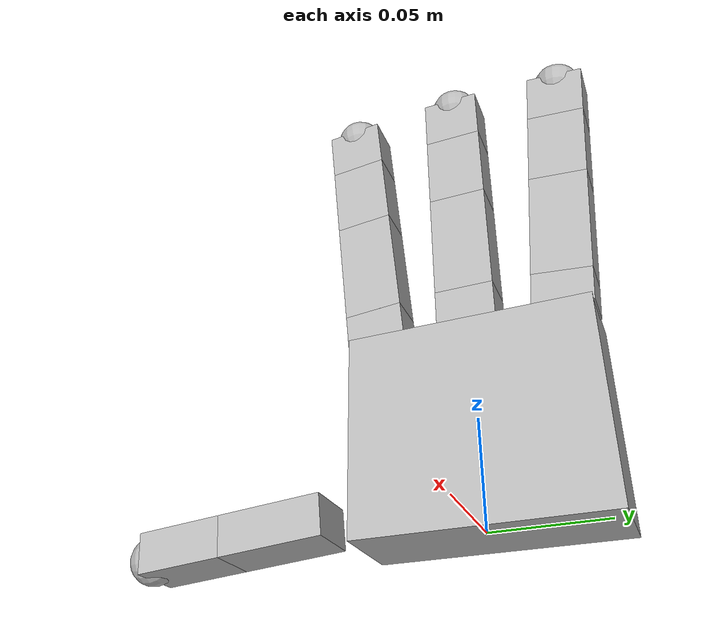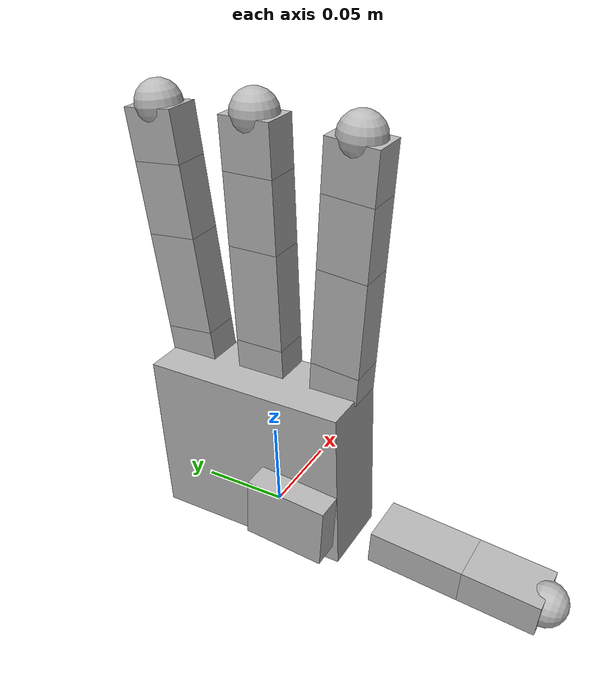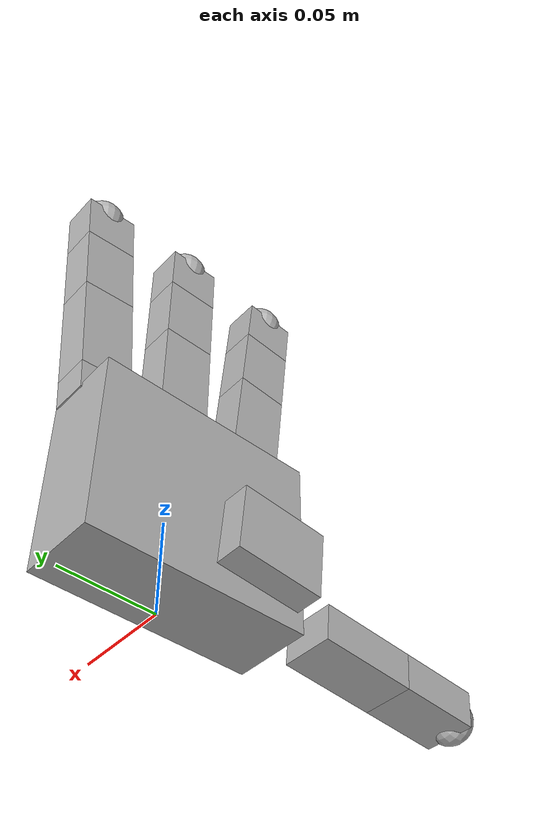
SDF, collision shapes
<?xml version='1.0'?>
<sdf version='1.6'>
  <model name='allegro_hand_left'>
    <link name='hand_root'>
      <pose frame=''>0 0 0 0 -0 0</pose>
      <inertial>
        <pose frame=''>0 0 0 0 -0 0</pose>
        <mass>0.4154</mass>
        <inertia>
          <ixx>0.00208916</ixx>
          <ixy>-3.63457e-06</ixy>
          <ixz>0.000223277</ixz>
          <iyy>0.00182848</iyy>
          <iyz>-1.75634e-05</iyz>
          <izz>0.000482459</izz>
        </inertia>
      </inertial>
      <collision name='hand_root_fixed_joint_lump__palm_link_collision'>
        <pose frame=''>-0.0093 0 0.0475 0 -0 0</pose>
        <geometry>
          <box>
            <size>0.0408 0.113 0.095</size>
          </box>
        </geometry>
      </collision>
      <visual name='hand_root_fixed_joint_lump__palm_link_visual'>
        <pose frame=''>0 0 0.095 -1.5708 0 0</pose>
        <geometry>
          <mesh>
            <scale>1 1 1</scale>
            <uri>../meshes/base_link_left.obj</uri>
          </mesh>
        </geometry>
      </visual>
    </link>

    <link name='link_8'>
      <pose frame=''>0 0.0435 0.093458 -0.087267 0 0</pose>
      <inertial>
        <pose frame=''>0 0 0 0 -0 0</pose>
        <mass>0.0119</mass>
        <inertia>
          <ixx>1.95377e-06</ixx>
          <ixy>3.03372e-09</ixy>
          <ixz>8.92323e-08</ixz>
          <iyy>1.17908e-06</iyy>
          <iyz>-3.7069e-08</iyz>
          <izz>1.49673e-06</izz>
        </inertia>
      </inertial>
      <collision name='link_8_collision'>
        <pose frame=''>0 0 0.0082 0 -0 0</pose>
        <geometry>
          <box>
            <size>0.0196 0.0275 0.0164</size>
          </box>
        </geometry>
      </collision>
      <visual name='link_8_visual'>
        <pose frame=''>0 0 0 0 -0 0</pose>
        <geometry>
          <mesh>
            <scale>1 1 1</scale>
            <uri>../meshes/link_0.0.obj</uri>
          </mesh>
        </geometry>
      </visual>
    </link>
    <joint name='joint_8' type='revolute'>
      <child>link_8</child>
      <parent>hand_root</parent>
      <axis>
        <xyz>0 -0.087156 -0.996195</xyz>
        <limit>
          <lower>-0.47</lower>
          <upper>0.47</upper>
          <effort>15</effort>
          <velocity>7</velocity>
        </limit>
        <dynamics>
          <damping>1e-2</damping>
          <friction>10</friction>
          <spring_reference>0</spring_reference>
          <spring_stiffness>0</spring_stiffness>
        </dynamics>
        <use_parent_model_frame>1</use_parent_model_frame>
      </axis>
    </joint>
    <link name='link_9'>
      <pose frame=''>0 0.044929 0.109796 -0.087267 0 0</pose>
      <inertial>
        <pose frame=''>0 0 0 0 -0 0</pose>
        <mass>0.065</mass>
        <inertia>
          <ixx>7.19218e-05</ixx>
          <ixy>0</ixy>
          <ixz>0</ixz>
          <iyy>7.4377e-05</iyy>
          <iyz>7.32186e-07</iyz>
          <izz>5.40622e-06</izz>
        </inertia>
      </inertial>
      <collision name='link_9_collision'>
        <pose frame=''>0 0 0.027 0 -0 0</pose>
        <geometry>
          <box>
            <size>0.0196 0.0275 0.054</size>
          </box>
        </geometry>
      </collision>
      <visual name='link_9_visual'>
        <pose frame=''>0 0 0 0 -0 0</pose>
        <geometry>
          <mesh>
            <scale>1 1 1</scale>
            <uri>../meshes/link_1.0.obj</uri>
          </mesh>
        </geometry>
      </visual>
    </link>
    <joint name='joint_9' type='revolute'>
      <child>link_9</child>
      <parent>link_8</parent>
      <axis>
        <xyz>0 0.996195 -0.087156</xyz>
        <limit>
          <lower>-0.196</lower>
          <upper>1.61</upper>
          <effort>15</effort>
          <velocity>7</velocity>
        </limit>
        <dynamics>
          <damping>1e-2</damping>
          <friction>5</friction>
          <spring_reference>0</spring_reference>
          <spring_stiffness>0</spring_stiffness>
        </dynamics>
        <use_parent_model_frame>1</use_parent_model_frame>
      </axis>
    </joint>
    <link name='link_10'>
      <pose frame=''>0 0.049636 0.16359 -0.087267 0 0</pose>
      <inertial>
        <pose frame=''>0 0 0 0 -0 0</pose>
        <mass>0.0355</mass>
        <inertia>
          <ixx>3.16925e-05</ixx>
          <ixy>1.07094e-09</ixy>
          <ixz>-4.91273e-09</ixz>
          <iyy>3.10516e-05</iyy>
          <iyz>3.87549e-08</iyz>
          <izz>3.20319e-06</izz>
        </inertia>
      </inertial>
      <collision name='link_10_collision'>
        <pose frame=''>0 0 0.0192 0 -0 0</pose>
        <geometry>
          <box>
            <size>0.0196 0.0275 0.0384</size>
          </box>
        </geometry>
      </collision>
      <visual name='link_10_visual'>
        <pose frame=''>0 0 0 0 -0 0</pose>
        <geometry>
          <mesh>
            <scale>1 1 1</scale>
            <uri>../meshes/link_2.0.obj</uri>
          </mesh>
        </geometry>
      </visual>
    </link>
    <joint name='joint_10' type='revolute'>
      <child>link_10</child>
      <parent>link_9</parent>
      <axis>
        <xyz>0 0.996195 -0.087156</xyz>
        <limit>
          <lower>-0.174</lower>
          <upper>1.709</upper>
          <effort>15</effort>
          <velocity>7</velocity>
        </limit>
        <dynamics>
          <damping>2.5e-2</damping>
          <friction>10</friction>
          <spring_reference>0</spring_reference>
          <spring_stiffness>0</spring_stiffness>
        </dynamics>
        <use_parent_model_frame>1</use_parent_model_frame>
      </axis>
    </joint>
    <link name='link_11'>
      <pose frame=''>0 0.052983 0.201844 -0.087267 0 0</pose>
      <inertial>
        <pose frame=''>0 0 0 0 -0 0</pose>
        <mass>0.0264</mass>
        <inertia>
          <ixx>1.26304e-05</ixx>
          <ixy>2.09248e-09</ixy>
          <ixz>-9.80352e-09</ixz>
          <iyy>1.1818e-05</iyy>
          <iyz>-1.29747e-08</iyz>
          <izz>2.48371e-06</izz>
        </inertia>
      </inertial>
      <collision name='link_11_collision'>
        <pose frame=''>0 0 0.01335 0 -0 0</pose>
        <geometry>
          <box>
            <size>0.0196 0.0275 0.0267</size>
          </box>
        </geometry>
      </collision>
      <collision name='link_11_tip_collision_1'>
        <pose frame=''>0 0 0.0267 0 -0 0</pose>
        <geometry>
          <sphere>
            <radius>0.012</radius>
          </sphere>
        </geometry>
      </collision>
      <visual name='link_11_visual'>
        <pose frame=''>0 0 0 0 -0 0</pose>
        <geometry>
          <mesh>
            <scale>1 1 1</scale>
            <uri>../meshes/link_3.0.obj</uri>
          </mesh>
        </geometry>
      </visual>
      <visual name='link_11_tip_visual_1'>
        <pose frame=''>0 0 0.0267 0 -0 0</pose>
        <geometry>
          <mesh>
            <scale>1 1 1</scale>
            <uri>../meshes/link_3.0_tip.obj</uri>
          </mesh>
        </geometry>
      </visual>
    </link>
    <joint name='joint_11' type='revolute'>
      <child>link_11</child>
      <parent>link_10</parent>
      <axis>
        <xyz>0 0.996195 -0.087156</xyz>
        <limit>
          <lower>-0.227</lower>
          <upper>1.618</upper>
          <effort>15</effort>
          <velocity>7</velocity>
        </limit>
        <dynamics>
          <damping>3.2e-2</damping>
          <friction>12</friction>
          <spring_reference>0</spring_reference>
          <spring_stiffness>0</spring_stiffness>
        </dynamics>
        <use_parent_model_frame>1</use_parent_model_frame>
      </axis>
    </joint>
    <link name='link_12'>
      <pose frame=''>-0.0182 -0.019333 0.049013 -3.14159 -1.48353 -1.5708</pose>
      <inertial>
        <pose frame=''>0 0 0 0 -0 0</pose>
        <mass>0.0176</mass>
        <inertia>
          <ixx>8.13883e-06</ixx>
          <ixy>-2.55226e-06</ixy>
          <ixz>3.89933e-06</ixz>
          <iyy>1.31421e-05</iyy>
          <iyz>1.46267e-06</iyz>
          <izz>1.00171e-05</izz>
        </inertia>
      </inertial>
      <collision name='link_12_collision'>
        <pose frame=''>-0.0179 0.009 0.0145 0 -0 0</pose>
        <geometry>
          <box>
            <size>0.0358 0.034 0.0455</size>
          </box>
        </geometry>
      </collision>
      <visual name='link_12_visual'>
        <pose frame=''>0 0 0 3.14159 -0 0</pose>
        <geometry>
          <mesh>
            <scale>1 1 1</scale>
            <uri>../meshes/link_12.0_left.obj</uri>
          </mesh>
        </geometry>
      </visual>
    </link>
    <joint name='joint_12' type='revolute'>
      <child>link_12</child>
      <parent>hand_root</parent>
      <axis>
        <xyz>-0 -0.087156 0.996195</xyz>
        <limit>
          <lower>0.263</lower>
          <upper>1.396</upper>
          <effort>15</effort>
          <velocity>7</velocity>
        </limit>
        <dynamics>
          <damping>1e-2</damping>
          <friction>10</friction>
          <spring_reference>0</spring_reference>
          <spring_stiffness>0</spring_stiffness>
        </dynamics>
        <use_parent_model_frame>1</use_parent_model_frame>
      </axis>
    </joint>
    <link name='link_13'>
      <pose frame=''>-0.0132 -0.056728 0.018638 -3.14159 -1.48353 -1.5708</pose>
      <inertial>
        <pose frame=''>0 0 0 0 -0 0</pose>
        <mass>0.0119</mass>
        <inertia>
          <ixx>1.9263e-06</ixx>
          <ixy>3.05433e-09</ixy>
          <ixz>8.86582e-08</ixz>
          <iyy>1.15276e-06</iyy>
          <iyz>-3.64521e-08</iyz>
          <izz>1.4957e-06</izz>
        </inertia>
      </inertial>
      <visual name='link_13_visual'>
        <pose frame=''>0 0 0 0 -0 0</pose>
        <geometry>
          <mesh>
            <scale>1 1 1</scale>
            <uri>../meshes/link_13.0.obj</uri>
          </mesh>
        </geometry>
      </visual>
    </link>
    <joint name='joint_13' type='revolute'>
      <child>link_13</child>
      <parent>link_12</parent>
      <axis>
        <xyz>0 0.996195 0.087156</xyz>
        <limit>
          <lower>-0.105</lower>
          <upper>1.163</upper>
          <effort>15</effort>
          <velocity>7</velocity>
        </limit>
        <dynamics>
          <damping>1e-2</damping>
          <friction>5</friction>
          <spring_reference>0</spring_reference>
          <spring_stiffness>0</spring_stiffness>
        </dynamics>
        <use_parent_model_frame>1</use_parent_model_frame>
      </axis>
    </joint>
    <link name='link_14'>
      <pose frame=''>-0.0132 -0.074361 0.017096 -3.14159 -1.48353 -1.5708</pose>
      <inertial>
        <pose frame=''>0 0 0 0 -0 0</pose>
        <mass>0.038</mass>
        <inertia>
          <ixx>3.67044e-05</ixx>
          <ixy>1.02277e-09</ixy>
          <ixz>1.4854e-07</ixz>
          <iyy>3.54042e-05</iyy>
          <iyz>-3.67203e-08</iyz>
          <izz>3.63275e-06</izz>
        </inertia>
      </inertial>
      <collision name='link_14_collision'>
        <pose frame=''>0 0 0.0257 0 -0 0</pose>
        <geometry>
          <box>
            <size>0.0196 0.0275 0.0514</size>
          </box>
        </geometry>
      </collision>
      <visual name='link_14_visual'>
        <pose frame=''>0 0 0 0 -0 0</pose>
        <geometry>
          <mesh>
            <scale>1 1 1</scale>
            <uri>../meshes/link_14.0.obj</uri>
          </mesh>
        </geometry>
      </visual>
    </link>
    <joint name='joint_14' type='revolute'>
      <child>link_14</child>
      <parent>link_13</parent>
      <axis>
        <xyz>-1 0 -0</xyz>
        <limit>
          <lower>-0.189</lower>
          <upper>1.644</upper>
          <effort>15</effort>
          <velocity>7</velocity>
        </limit>
        <dynamics>
          <damping>1e-2</damping>
          <friction>10</friction>
          <spring_reference>0</spring_reference>
          <spring_stiffness>0</spring_stiffness>
        </dynamics>
        <use_parent_model_frame>1</use_parent_model_frame>
      </axis>
    </joint>
    <link name='link_15'>
      <pose frame=''>-0.0132 -0.125565 0.012616 -3.14159 -1.48353 -1.5708</pose>
      <inertial>
        <pose frame=''>0 0 0.012781 0 -0 0</pose>
        <mass>0.0556</mass>
        <inertia>
          <ixx>7.05437e-05</ixx>
          <ixy>0</ixy>
          <ixz>0</ixz>
          <iyy>6.56425e-05</iyy>
          <iyz>-3.24769e-08</iyz>
          <izz>1.95412e-05</izz>
        </inertia>
      </inertial>
      <collision name='link_15_collision'>
        <pose frame=''>0 0 0.02115 0 -0 0</pose>
        <geometry>
          <box>
            <size>0.0196 0.0275 0.0423</size>
          </box>
        </geometry>
      </collision>
      <collision name='link_15_tip_collision_1'>
        <pose frame=''>0 0 0.0423 0 -0 0</pose>
        <geometry>
          <sphere>
            <radius>0.012</radius>
          </sphere>
        </geometry>
      </collision>
      <visual name='link_15_visual'>
        <pose frame=''>0 0 0 0 -0 0</pose>
        <geometry>
          <mesh>
            <scale>1 1 1</scale>
            <uri>../meshes/link_15.0.obj</uri>
          </mesh>
        </geometry>
      </visual>
      <visual name='link_15_tip_visual_1'>
        <pose frame=''>0 0 0.0423 0 -0 0</pose>
        <geometry>
          <mesh>
            <scale>1 1 1</scale>
            <uri>../meshes/link_15.0_tip.obj</uri>
          </mesh>
        </geometry>
      </visual>
    </link>
    <joint name='joint_15' type='revolute'>
      <child>link_15</child>
      <parent>link_14</parent>
      <axis>
        <xyz>-1 0 -0</xyz>
        <limit>
          <lower>-0.162</lower>
          <upper>1.719</upper>
          <effort>15</effort>
          <velocity>7</velocity>
        </limit>
        <dynamics>
          <damping>1e-2</damping>
          <friction>12</friction>
          <spring_reference>0</spring_reference>
          <spring_stiffness>0</spring_stiffness>
        </dynamics>
        <use_parent_model_frame>1</use_parent_model_frame>
      </axis>
    </joint>
    <link name='link_4'>
      <pose frame=''>0 0 0.0957 0 -0 0</pose>
      <inertial>
        <pose frame=''>0 0 0 0 -0 0</pose>
        <mass>0.0119</mass>
        <inertia>
          <ixx>1.95377e-06</ixx>
          <ixy>3.03372e-09</ixy>
          <ixz>8.92323e-08</ixz>
          <iyy>1.17908e-06</iyy>
          <iyz>-3.7069e-08</iyz>
          <izz>1.49673e-06</izz>
        </inertia>
      </inertial>
      <collision name='link_4_collision'>
        <pose frame=''>0 0 0.0082 0 -0 0</pose>
        <geometry>
          <box>
            <size>0.0196 0.0275 0.0164</size>
          </box>
        </geometry>
      </collision>
      <visual name='link_4_visual'>
        <pose frame=''>0 0 0 0 -0 0</pose>
        <geometry>
          <mesh>
            <scale>1 1 1</scale>
            <uri>../meshes/link_0.0.obj</uri>
          </mesh>
        </geometry>
      </visual>
    </link>
    <joint name='joint_4' type='revolute'>
      <child>link_4</child>
      <parent>hand_root</parent>
      <axis>
        <xyz>0 0 -1</xyz>
        <limit>
          <lower>-0.47</lower>
          <upper>0.47</upper>
          <effort>15</effort>
          <velocity>7</velocity>
        </limit>
        <dynamics>
          <damping>1e-2</damping>
          <friction>10</friction>
          <spring_reference>0</spring_reference>
          <spring_stiffness>0</spring_stiffness>
        </dynamics>
        <use_parent_model_frame>1</use_parent_model_frame>
      </axis>
    </joint>
    <link name='link_5'>
      <pose frame=''>0 0 0.1121 0 -0 0</pose>
      <inertial>
        <pose frame=''>0 0 0 0 -0 0</pose>
        <mass>0.065</mass>
        <inertia>
          <ixx>7.19218e-05</ixx>
          <ixy>0</ixy>
          <ixz>0</ixz>
          <iyy>7.4377e-05</iyy>
          <iyz>7.32186e-07</iyz>
          <izz>5.40622e-06</izz>
        </inertia>
      </inertial>
      <collision name='link_5_collision'>
        <pose frame=''>0 0 0.027 0 -0 0</pose>
        <geometry>
          <box>
            <size>0.0196 0.0275 0.054</size>
          </box>
        </geometry>
      </collision>
      <visual name='link_5_visual'>
        <pose frame=''>0 0 0 0 -0 0</pose>
        <geometry>
          <mesh>
            <scale>1 1 1</scale>
            <uri>../meshes/link_1.0.obj</uri>
          </mesh>
        </geometry>
      </visual>
    </link>
    <joint name='joint_5' type='revolute'>
      <child>link_5</child>
      <parent>link_4</parent>
      <axis>
        <xyz>0 1 0</xyz>
        <limit>
          <lower>-0.196</lower>
          <upper>1.61</upper>
          <effort>15</effort>
          <velocity>7</velocity>
        </limit>
        <dynamics>
          <damping>1e-2</damping>
          <friction>5</friction>
          <spring_reference>0</spring_reference>
          <spring_stiffness>0</spring_stiffness>
        </dynamics>
        <use_parent_model_frame>1</use_parent_model_frame>
      </axis>
    </joint>
    <link name='link_6'>
      <pose frame=''>0 0 0.1661 0 -0 0</pose>
      <inertial>
        <pose frame=''>0 0 0 0 -0 0</pose>
        <mass>0.0355</mass>
        <inertia>
          <ixx>3.16925e-05</ixx>
          <ixy>1.07094e-09</ixy>
          <ixz>-4.91273e-09</ixz>
          <iyy>3.10516e-05</iyy>
          <iyz>3.87549e-08</iyz>
          <izz>3.20319e-06</izz>
        </inertia>
      </inertial>
      <collision name='link_6_collision'>
        <pose frame=''>0 0 0.0192 0 -0 0</pose>
        <geometry>
          <box>
            <size>0.0196 0.0275 0.0384</size>
          </box>
        </geometry>
      </collision>
      <visual name='link_6_visual'>
        <pose frame=''>0 0 0 0 -0 0</pose>
        <geometry>
          <mesh>
            <scale>1 1 1</scale>
            <uri>../meshes/link_2.0.obj</uri>
          </mesh>
        </geometry>
      </visual>
    </link>
    <joint name='joint_6' type='revolute'>
      <child>link_6</child>
      <parent>link_5</parent>
      <axis>
        <xyz>0 1 0</xyz>
        <limit>
          <lower>-0.174</lower>
          <upper>1.709</upper>
          <effort>15</effort>
          <velocity>7</velocity>
        </limit>
        <dynamics>
          <damping>2.5e-2</damping>
          <friction>10</friction>
          <spring_reference>0</spring_reference>
          <spring_stiffness>0</spring_stiffness>
        </dynamics>
        <use_parent_model_frame>1</use_parent_model_frame>
      </axis>
    </joint>
    <link name='link_7'>
      <pose frame=''>0 0 0.2045 0 -0 0</pose>
      <inertial>
        <pose frame=''>0 0 0 0 -0 0</pose>
        <mass>0.0264</mass>
        <inertia>
          <ixx>1.26304e-05</ixx>
          <ixy>2.09248e-09</ixy>
          <ixz>-9.80352e-09</ixz>
          <iyy>1.1818e-05</iyy>
          <iyz>-1.29747e-08</iyz>
          <izz>2.48371e-06</izz>
        </inertia>
      </inertial>
      <collision name='link_7_collision'>
        <pose frame=''>0 0 0.01335 0 -0 0</pose>
        <geometry>
          <box>
            <size>0.0196 0.0275 0.0267</size>
          </box>
        </geometry>
      </collision>
      <collision name='link_7_tip_collision_1'>
        <pose frame=''>0 0 0.0267 0 -0 0</pose>
        <geometry>
          <sphere>
            <radius>0.012</radius>
          </sphere>
        </geometry>
      </collision>
      <visual name='link_7_visual'>
        <pose frame=''>0 0 0 0 -0 0</pose>
        <geometry>
          <mesh>
            <scale>1 1 1</scale>
            <uri>../meshes/link_3.0.obj</uri>
          </mesh>
        </geometry>
      </visual>
      <visual name='link_7_tip_visual_1'>
        <pose frame=''>0 0 0.0267 0 -0 0</pose>
        <geometry>
          <mesh>
            <scale>1 1 1</scale>
            <uri>../meshes/link_3.0_tip.obj</uri>
          </mesh>
        </geometry>
      </visual>
    </link>
    <joint name='joint_7' type='revolute'>
      <child>link_7</child>
      <parent>link_6</parent>
      <axis>
        <xyz>0 1 0</xyz>
        <limit>
          <lower>-0.227</lower>
          <upper>1.618</upper>
          <effort>15</effort>
          <velocity>7</velocity>
        </limit>
        <dynamics>
          <damping>3.2e-2</damping>
          <friction>12</friction>
          <spring_reference>0</spring_reference>
          <spring_stiffness>0</spring_stiffness>
        </dynamics>
        <use_parent_model_frame>1</use_parent_model_frame>
      </axis>
    </joint>
    <link name='link_0'>
      <pose frame=''>0 -0.0435 0.093458 0.087267 -0 0</pose>
      <inertial>
        <pose frame=''>0 0 0 0 -0 0</pose>
        <mass>0.0119</mass>
        <inertia>
          <ixx>1.95377e-06</ixx>
          <ixy>3.03372e-09</ixy>
          <ixz>8.92323e-08</ixz>
          <iyy>1.17908e-06</iyy>
          <iyz>-3.7069e-08</iyz>
          <izz>1.49673e-06</izz>
        </inertia>
      </inertial>
      <collision name='link_0_collision'>
        <pose frame=''>0 0 0.0082 0 -0 0</pose>
        <geometry>
          <box>
            <size>0.0196 0.0275 0.0164</size>
          </box>
        </geometry>
      </collision>
      <visual name='link_0_visual'>
        <pose frame=''>0 0 0 0 -0 0</pose>
        <geometry>
          <mesh>
            <scale>1 1 1</scale>
            <uri>../meshes/link_0.0.obj</uri>
          </mesh>
        </geometry>
      </visual>
    </link>
    <joint name='joint_0' type='revolute'>
      <child>link_0</child>
      <parent>hand_root</parent>
      <axis>
        <xyz>0 0.087156 -0.996195</xyz>
        <limit>
          <lower>-0.47</lower>
          <upper>0.47</upper>
          <effort>15</effort>
          <velocity>7</velocity>
        </limit>
        <dynamics>
          <damping>1e-2</damping>
          <friction>10</friction>
          <spring_reference>0</spring_reference>
          <spring_stiffness>0</spring_stiffness>
        </dynamics>
        <use_parent_model_frame>1</use_parent_model_frame>
      </axis>
    </joint>
    <link name='link_1'>
      <pose frame=''>0 -0.044929 0.109796 0.087267 -0 0</pose>
      <inertial>
        <pose frame=''>0 0 0 0 -0 0</pose>
        <mass>0.065</mass>
        <inertia>
          <ixx>7.19218e-05</ixx>
          <ixy>0</ixy>
          <ixz>0</ixz>
          <iyy>7.4377e-05</iyy>
          <iyz>7.32186e-07</iyz>
          <izz>5.40622e-06</izz>
        </inertia>
      </inertial>
      <collision name='link_1_collision'>
        <pose frame=''>0 0 0.027 0 -0 0</pose>
        <geometry>
          <box>
            <size>0.0196 0.0275 0.054</size>
          </box>
        </geometry>
      </collision>
      <visual name='link_1_visual'>
        <pose frame=''>0 0 0 0 -0 0</pose>
        <geometry>
          <mesh>
            <scale>1 1 1</scale>
            <uri>../meshes/link_1.0.obj</uri>
          </mesh>
        </geometry>
      </visual>
    </link>
    <joint name='joint_1' type='revolute'>
      <child>link_1</child>
      <parent>link_0</parent>
      <axis>
        <xyz>0 0.996195 0.087156</xyz>
        <limit>
          <lower>-0.196</lower>
          <upper>1.61</upper>
          <effort>15</effort>
          <velocity>7</velocity>
        </limit>
        <dynamics>
          <damping>1e-2</damping>
          <friction>5</friction>
          <spring_reference>0</spring_reference>
          <spring_stiffness>0</spring_stiffness>
        </dynamics>
        <use_parent_model_frame>1</use_parent_model_frame>
      </axis>
    </joint>
    <link name='link_2'>
      <pose frame=''>0 -0.049636 0.16359 0.087267 -0 0</pose>
      <inertial>
        <pose frame=''>0 0 0 0 -0 0</pose>
        <mass>0.0355</mass>
        <inertia>
          <ixx>3.16925e-05</ixx>
          <ixy>1.07094e-09</ixy>
          <ixz>-4.91273e-09</ixz>
          <iyy>3.10516e-05</iyy>
          <iyz>3.87549e-08</iyz>
          <izz>3.20319e-06</izz>
        </inertia>
      </inertial>
      <collision name='link_2_collision'>
        <pose frame=''>0 0 0.0192 0 -0 0</pose>
        <geometry>
          <box>
            <size>0.0196 0.0275 0.0384</size>
          </box>
        </geometry>
      </collision>
      <visual name='link_2_visual'>
        <pose frame=''>0 0 0 0 -0 0</pose>
        <geometry>
          <mesh>
            <scale>1 1 1</scale>
            <uri>../meshes/link_2.0.obj</uri>
          </mesh>
        </geometry>
      </visual>
    </link>
    <joint name='joint_2' type='revolute'>
      <child>link_2</child>
      <parent>link_1</parent>
      <axis>
        <xyz>0 0.996195 0.087156</xyz>
        <limit>
          <lower>-0.174</lower>
          <upper>1.709</upper>
          <effort>15</effort>
          <velocity>7</velocity>
        </limit>
        <dynamics>
          <damping>2.5e-2</damping>
          <friction>10</friction>
          <spring_reference>0</spring_reference>
          <spring_stiffness>0</spring_stiffness>
        </dynamics>
        <use_parent_model_frame>1</use_parent_model_frame>
      </axis>
    </joint>
    <link name='link_3'>
      <pose frame=''>0 -0.052983 0.201844 0.087267 -0 0</pose>
      <inertial>
        <pose frame=''>0 0 0 0 -0 0</pose>
        <mass>0.0264</mass>
        <inertia>
          <ixx>1.26304e-05</ixx>
          <ixy>2.09248e-09</ixy>
          <ixz>-9.80352e-09</ixz>
          <iyy>1.1818e-05</iyy>
          <iyz>-1.29747e-08</iyz>
          <izz>2.48371e-06</izz>
        </inertia>
      </inertial>
      <collision name='link_3_collision'>
        <pose frame=''>0 0 0.01335 0 -0 0</pose>
        <geometry>
          <box>
            <size>0.0196 0.0275 0.0267</size>
          </box>
        </geometry>
      </collision>
      <collision name='link_3_tip_collision_1'>
        <pose frame=''>0 0 0.0267 0 -0 0</pose>
        <geometry>
          <sphere>
            <radius>0.012</radius>
          </sphere>
        </geometry>
      </collision>
      <visual name='link_3_visual'>
        <pose frame=''>0 0 0 0 -0 0</pose>
        <geometry>
          <mesh>
            <scale>1 1 1</scale>
            <uri>../meshes/link_3.0.obj</uri>
          </mesh>
        </geometry>
      </visual>
      <visual name='link_3_tip_visual_1'>
        <pose frame=''>0 0 0.0267 0 -0 0</pose>
        <geometry>
          <mesh>
            <scale>1 1 1</scale>
            <uri>../meshes/link_3.0_tip.obj</uri>
          </mesh>
        </geometry>
      </visual>
    </link>
    <joint name='joint_3' type='revolute'>
      <child>link_3</child>
      <parent>link_2</parent>
      <axis>
        <xyz>0 0.996195 0.087156</xyz>
        <limit>
          <lower>-0.227</lower>
          <upper>1.618</upper>
          <effort>15</effort>
          <velocity>7</velocity>
        </limit>
        <dynamics>
          <damping>3.2e-2</damping>
          <friction>12</friction>
          <spring_reference>0</spring_reference>
          <spring_stiffness>0</spring_stiffness>
        </dynamics>
        <use_parent_model_frame>1</use_parent_model_frame>
      </axis>
    </joint>
  </model>
</sdf>
